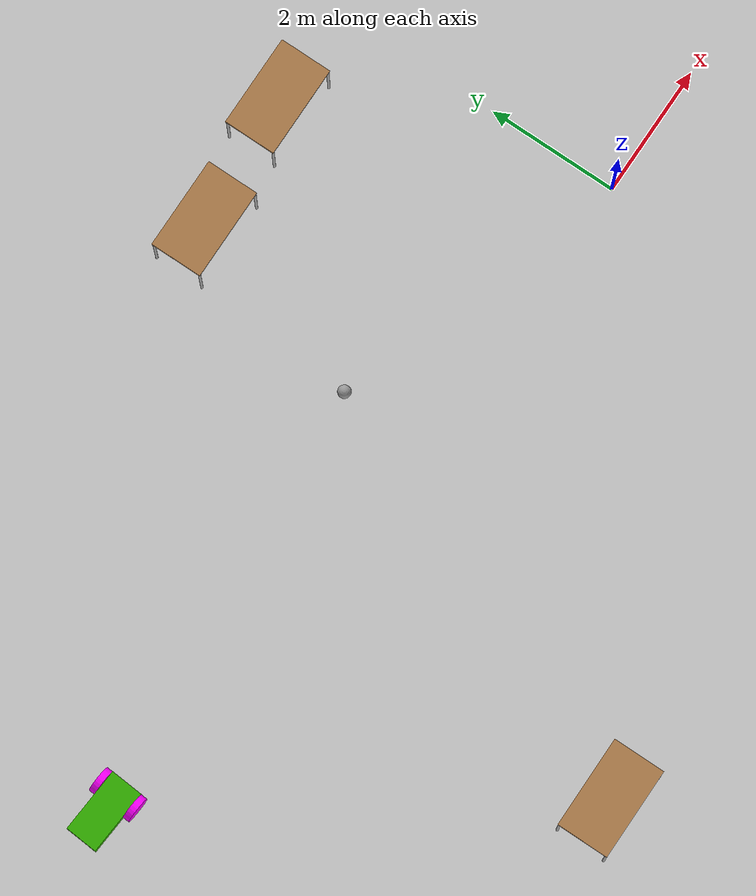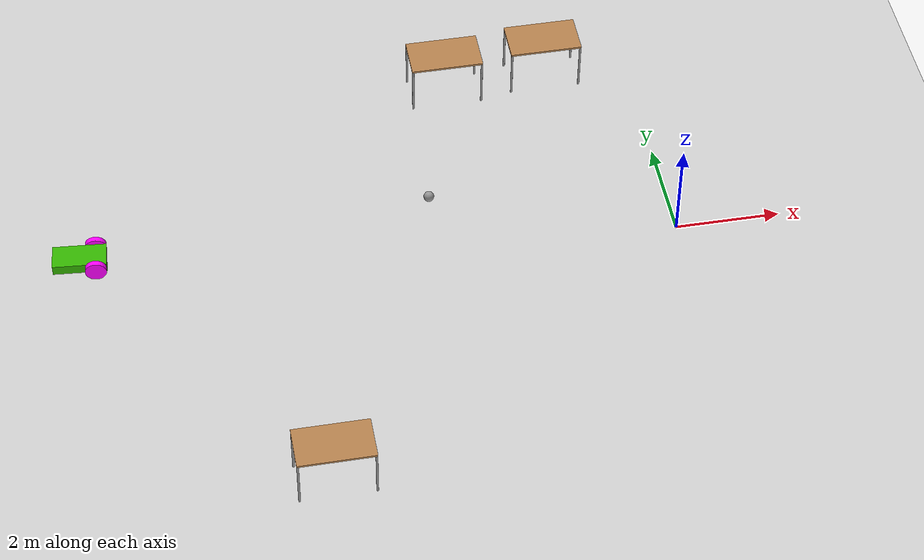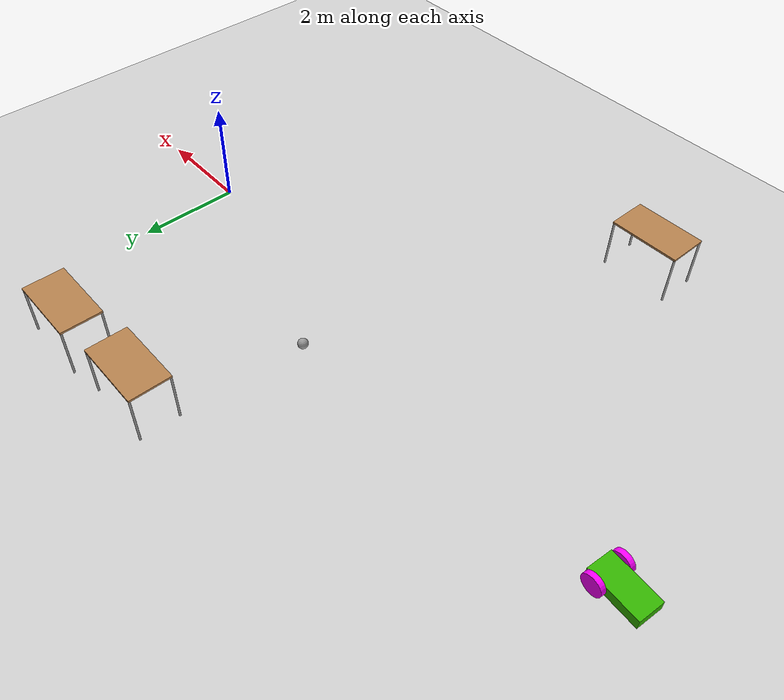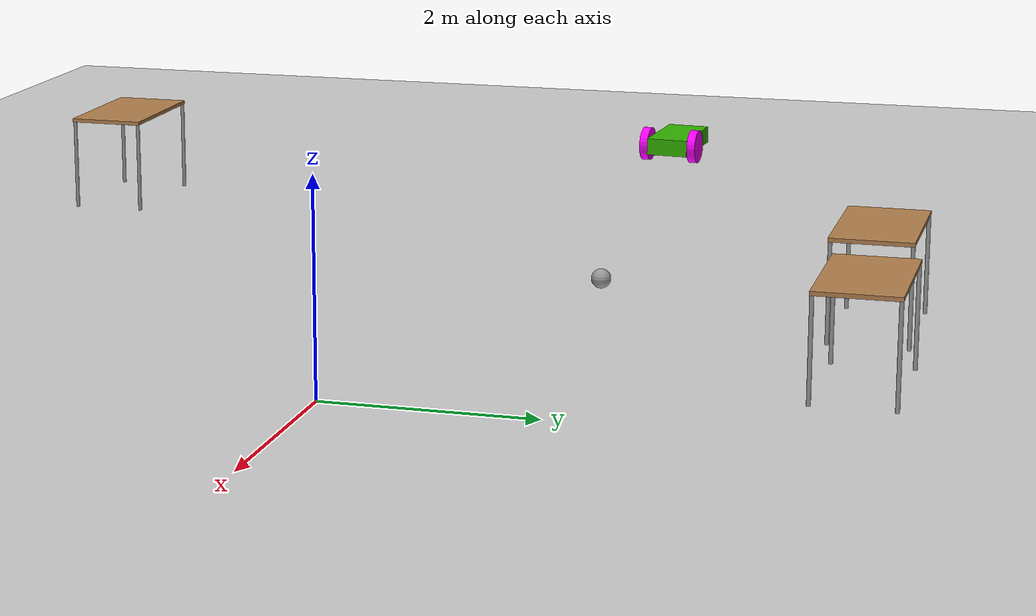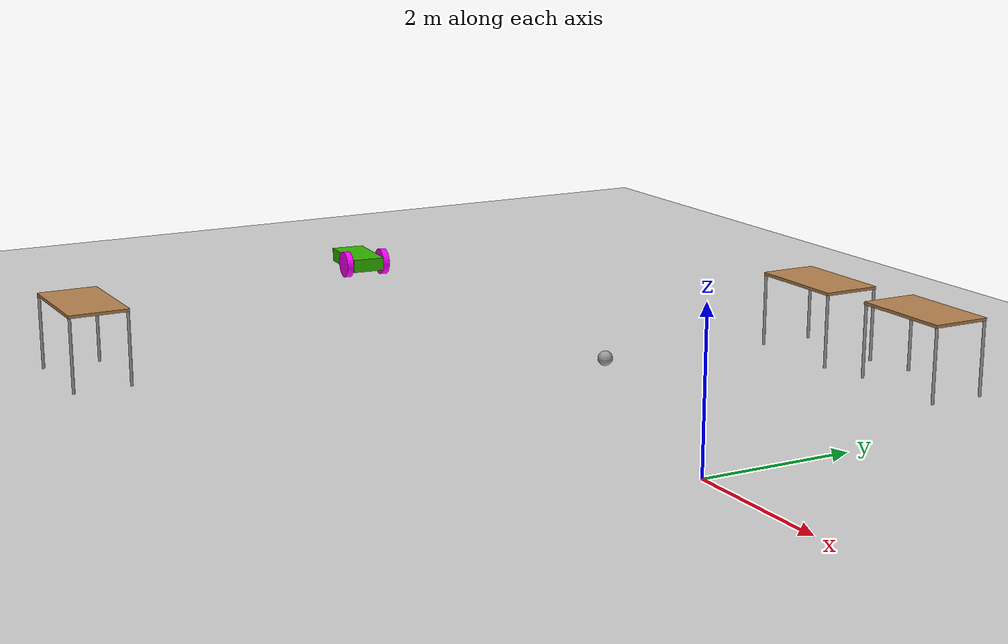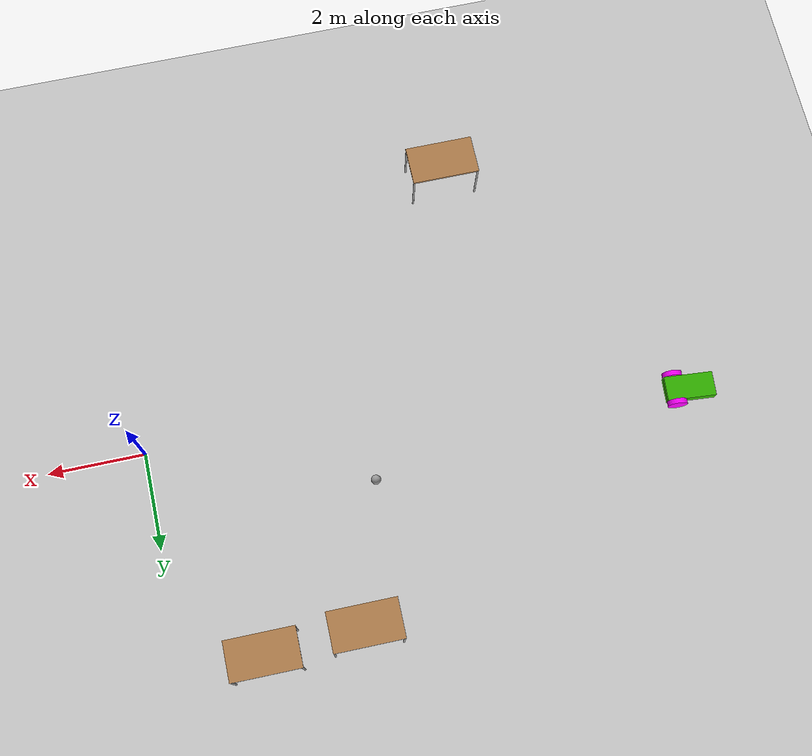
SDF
<sdf version="1.6">
 <world name="default">
  <model name="ground_plane">
   <static>1</static>
   <link name="link">
    <collision name="collision">
     <geometry><plane><normal>0 0 1</normal><size>100 100</size></plane></geometry>
     <surface><friction><ode><mu>100</mu><mu2>50</mu2></ode></friction></surface>
    </collision>
    <visual name="visual">
     <cast_shadows>0</cast_shadows>
     <geometry><plane><normal>0 0 1</normal><size>100 100</size></plane></geometry>
     <material>
      <script><uri>file://media/materials/scripts/gazebo.material</uri><name>Gazebo/Grey</name></script>
     </material>
    </visual>
   </link>
  </model>
  <model name="diffrobot">
   <link name="link_0">
    <pose>-0.05 -0 0.025 0 -0 0</pose>
    <inertial>
     <mass>1</mass>
     <inertia>
      <ixx>0.166667</ixx>
      <ixy>0</ixy>
      <ixz>0</ixz>
      <iyy>0.166667</iyy>
      <iyz>0</iyz>
      <izz>0.166667</izz>
     </inertia>
    </inertial>
    <visual name="visual">
     <geometry><box><size>1 0.5 0.2</size></box></geometry>
     <material>
      <lighting>1</lighting>
      <script><uri>file://media/materials/scripts/gazebo.material</uri><name>Gazebo/Grey</name></script>
      <ambient>0.2 0.7 0 1</ambient>
      <diffuse>0.2 0.7 0 1</diffuse>
      <specular>0.2 0.7 0 1</specular>
      <emissive>0.2 0.7 0 1</emissive>
      <shader type="vertex"><normal_map>__default__</normal_map></shader>
     </material>
    </visual>
    <collision name="collision">
     <geometry><box><size>1 0.5 0.2</size></box></geometry>
     <surface>
      <friction>
       <ode><mu>1</mu><mu2>1</mu2><fdir1>0 0 0</fdir1><slip1>0</slip1><slip2>0</slip2></ode>
       <torsional>
        <coefficient>1</coefficient>
        <patch_radius>0</patch_radius>
        <surface_radius>0</surface_radius>
        <use_patch_radius>1</use_patch_radius>
        <ode><slip>0</slip></ode>
       </torsional>
      </friction>
      <bounce><restitution_coefficient>0</restitution_coefficient><threshold>1e+06</threshold></bounce>
      <contact>
       <collide_without_contact>0</collide_without_contact>
       <collide_without_contact_bitmask>1</collide_without_contact_bitmask>
       <collide_bitmask>1</collide_bitmask>
       <ode>
        <soft_cfm>0</soft_cfm>
        <soft_erp>0.2</soft_erp>
        <kp>1e+13</kp>
        <kd>1</kd>
        <max_vel>0.01</max_vel>
        <min_depth>0</min_depth>
       </ode>
       <bullet>
        <split_impulse>1</split_impulse>
        <split_impulse_penetration_threshold>-0.01</split_impulse_penetration_threshold>
        <soft_cfm>0</soft_cfm>
        <soft_erp>0.2</soft_erp>
        <kp>1e+13</kp>
        <kd>1</kd>
       </bullet>
      </contact>
     </surface>
    </collision>
   </link>
   <link name="link_1">
    <pose>0.25 -0.300019 0.025 1.5707 -0 0</pose>
    <inertial>
     <mass>1</mass>
     <inertia><ixx>0.145833</ixx><ixy>0</ixy><ixz>0</ixz><iyy>0.145833</iyy><iyz>0</iyz><izz>0.125</izz></inertia>
    </inertial>
    <visual name="visual">
     <geometry><cylinder><radius>0.2</radius><length>0.1</length></cylinder></geometry>
     <material>
      <lighting>1</lighting>
      <script><uri>file://media/materials/scripts/gazebo.material</uri><name>Gazebo/Grey</name></script>
      <ambient>1 0 1 1</ambient>
      <diffuse>1 0 1 1</diffuse>
      <specular>1 0 1 1</specular>
      <emissive>1 0 1 1</emissive>
      <shader type="vertex"><normal_map>__default__</normal_map></shader>
     </material>
    </visual>
    <collision name="collision">
     <geometry><cylinder><radius>0.2</radius><length>0.1</length></cylinder></geometry>
     <surface>
      <friction>
       <ode><mu>1</mu><mu2>1</mu2><fdir1>0 0 0</fdir1><slip1>0</slip1><slip2>0</slip2></ode>
       <torsional>
        <coefficient>1</coefficient>
        <patch_radius>0</patch_radius>
        <surface_radius>0</surface_radius>
        <use_patch_radius>1</use_patch_radius>
        <ode><slip>0</slip></ode>
       </torsional>
      </friction>
      <bounce><restitution_coefficient>0</restitution_coefficient><threshold>1e+06</threshold></bounce>
      <contact>
       <collide_without_contact>0</collide_without_contact>
       <collide_without_contact_bitmask>1</collide_without_contact_bitmask>
       <collide_bitmask>1</collide_bitmask>
       <ode>
        <soft_cfm>0</soft_cfm>
        <soft_erp>0.2</soft_erp>
        <kp>1e+13</kp>
        <kd>1</kd>
        <max_vel>0.01</max_vel>
        <min_depth>0</min_depth>
       </ode>
       <bullet>
        <split_impulse>1</split_impulse>
        <split_impulse_penetration_threshold>-0.01</split_impulse_penetration_threshold>
        <soft_cfm>0</soft_cfm>
        <soft_erp>0.2</soft_erp>
        <kp>1e+13</kp>
        <kd>1</kd>
       </bullet>
      </contact>
     </surface>
    </collision>
   </link>
   <link name="link_1_clone">
    <pose>0.25 0.300019 0.025 1.5707 -0 0</pose>
    <inertial>
     <mass>1</mass>
     <inertia><ixx>0.145833</ixx><ixy>0</ixy><ixz>0</ixz><iyy>0.145833</iyy><iyz>0</iyz><izz>0.125</izz></inertia>
    </inertial>
    <visual name="visual">
     <geometry><cylinder><radius>0.2</radius><length>0.1</length></cylinder></geometry>
     <material>
      <lighting>1</lighting>
      <script><uri>file://media/materials/scripts/gazebo.material</uri><name>Gazebo/Grey</name></script>
      <ambient>1 0 1 1</ambient>
      <diffuse>1 0 1 1</diffuse>
      <specular>1 0 1 1</specular>
      <emissive>1 0 1 1</emissive>
      <shader type="vertex"><normal_map>__default__</normal_map></shader>
     </material>
    </visual>
    <collision name="collision">
     <geometry><cylinder><radius>0.2</radius><length>0.1</length></cylinder></geometry>
     <surface>
      <friction>
       <ode><mu>1</mu><mu2>1</mu2><fdir1>0 0 0</fdir1><slip1>0</slip1><slip2>0</slip2></ode>
       <torsional>
        <coefficient>1</coefficient>
        <patch_radius>0</patch_radius>
        <surface_radius>0</surface_radius>
        <use_patch_radius>1</use_patch_radius>
        <ode><slip>0</slip></ode>
       </torsional>
      </friction>
      <bounce><restitution_coefficient>0</restitution_coefficient><threshold>1e+06</threshold></bounce>
      <contact>
       <collide_without_contact>0</collide_without_contact>
       <collide_without_contact_bitmask>1</collide_without_contact_bitmask>
       <collide_bitmask>1</collide_bitmask>
       <ode>
        <soft_cfm>0</soft_cfm>
        <soft_erp>0.2</soft_erp>
        <kp>1e+13</kp>
        <kd>1</kd>
        <max_vel>0.01</max_vel>
        <min_depth>0</min_depth>
       </ode>
       <bullet>
        <split_impulse>1</split_impulse>
        <split_impulse_penetration_threshold>-0.01</split_impulse_penetration_threshold>
        <soft_cfm>0</soft_cfm>
        <soft_erp>0.2</soft_erp>
        <kp>1e+13</kp>
        <kd>1</kd>
       </bullet>
      </contact>
     </surface>
    </collision>
   </link>
   <link name="link_2">
    <pose>-0.45 0 -0.075 0 -0 0</pose>
    <inertial>
     <mass>1</mass>
     <inertia><ixx>0.1</ixx><ixy>0</ixy><ixz>0</ixz><iyy>0.1</iyy><iyz>0</iyz><izz>0.1</izz></inertia>
    </inertial>
    <visual name="visual">
     <geometry><sphere><radius>0.1</radius></sphere></geometry>
     <material>
      <lighting>1</lighting>
      <script><uri>file://media/materials/scripts/gazebo.material</uri><name>Gazebo/Grey</name></script>
      <ambient>0.3 0.3 0.3 1</ambient>
      <diffuse>0.7 0.7 0.7 1</diffuse>
      <specular>0.01 0.01 0.01 1</specular>
      <emissive>0 0 0 1</emissive>
      <shader type="vertex"><normal_map>__default__</normal_map></shader>
     </material>
    </visual>
    <collision name="collision">
     <geometry><sphere><radius>0.1</radius></sphere></geometry>
     <surface>
      <friction>
       <ode><mu>1</mu><mu2>1</mu2><fdir1>0 0 0</fdir1><slip1>0</slip1><slip2>0</slip2></ode>
       <torsional>
        <coefficient>1</coefficient>
        <patch_radius>0</patch_radius>
        <surface_radius>0</surface_radius>
        <use_patch_radius>1</use_patch_radius>
        <ode><slip>0</slip></ode>
       </torsional>
      </friction>
      <bounce><restitution_coefficient>0</restitution_coefficient><threshold>1e+06</threshold></bounce>
      <contact>
       <collide_without_contact>0</collide_without_contact>
       <collide_without_contact_bitmask>1</collide_without_contact_bitmask>
       <collide_bitmask>1</collide_bitmask>
       <ode>
        <soft_cfm>0</soft_cfm>
        <soft_erp>0.2</soft_erp>
        <kp>1e+13</kp>
        <kd>1</kd>
        <max_vel>0.01</max_vel>
        <min_depth>0</min_depth>
       </ode>
       <bullet>
        <split_impulse>1</split_impulse>
        <split_impulse_penetration_threshold>-0.01</split_impulse_penetration_threshold>
        <soft_cfm>0</soft_cfm>
        <soft_erp>0.2</soft_erp>
        <kp>1e+13</kp>
        <kd>1</kd>
       </bullet>
      </contact>
     </surface>
    </collision>
   </link>
   <joint name="link_0_JOINT_0" type="revolute">
    <parent>link_0</parent>
    <child>link_1</child>
    <axis>
     <xyz>0 0 1</xyz>
     <use_parent_model_frame>0</use_parent_model_frame>
     <limit>
      <lower>-1.79769e+308</lower>
      <upper>1.79769e+308</upper>
      <effort>-1</effort>
      <velocity>-1</velocity>
     </limit>
     <dynamics>
      <spring_reference>0</spring_reference>
      <spring_stiffness>0</spring_stiffness>
      <damping>0</damping>
      <friction>0</friction>
     </dynamics>
    </axis>
    <physics>
     <ode><limit><cfm>0</cfm><erp>0.2</erp></limit><suspension><cfm>0</cfm><erp>0.2</erp></suspension></ode>
    </physics>
   </joint>
   <joint name="link_0_JOINT_1" type="revolute">
    <parent>link_0</parent>
    <child>link_1_clone</child>
    <axis>
     <xyz>0 0 1</xyz>
     <use_parent_model_frame>0</use_parent_model_frame>
     <limit>
      <lower>-1.79769e+308</lower>
      <upper>1.79769e+308</upper>
      <effort>-1</effort>
      <velocity>-1</velocity>
     </limit>
     <dynamics>
      <spring_reference>0</spring_reference>
      <spring_stiffness>0</spring_stiffness>
      <damping>0</damping>
      <friction>0</friction>
     </dynamics>
    </axis>
    <physics>
     <ode><limit><cfm>0</cfm><erp>0.2</erp></limit><suspension><cfm>0</cfm><erp>0.2</erp></suspension></ode>
    </physics>
   </joint>
   <joint name="link_0_JOINT_2" type="ball">
    <parent>link_0</parent>
    <child>link_2</child>
    <physics>
     <ode><limit><cfm>0</cfm><erp>0.2</erp></limit><suspension><cfm>0</cfm><erp>0.2</erp></suspension></ode>
    </physics>
   </joint>
   <static>0</static>
   <pose>-11.1125 0.954521 0.175003 0 -7e-06 -0.081413</pose>
  </model>
  <model name="table">
   <static>0</static>
   <link name="link">
    <collision name="surface">
     <pose>0 0 1 0 -0 0</pose>
     <geometry><box><size>1.5 0.8 0.03</size></box></geometry>
     <surface><friction><ode><mu>0.6</mu><mu2>0.6</mu2></ode></friction></surface>
    </collision>
    <visual name="visual1">
     <pose>0 0 1 0 -0 0</pose>
     <geometry><box><size>1.4 0.8 0.04</size></box></geometry>
     <material>
      <script><uri>file://media/materials/scripts/gazebo.material</uri><name>Gazebo/Wood</name></script>
     </material>
    </visual>
    <collision name="front_left_leg">
     <pose>0.68 0.38 0.5 0 -0 0</pose>
     <geometry><cylinder><radius>0.02</radius><length>1</length></cylinder></geometry>
    </collision>
    <visual name="front_left_leg">
     <pose>0.68 0.38 0.5 0 -0 0</pose>
     <geometry><cylinder><radius>0.02</radius><length>1</length></cylinder></geometry>
     <material>
      <script><uri>file://media/materials/scripts/gazebo.material</uri><name>Gazebo/Grey</name></script>
     </material>
    </visual>
    <collision name="front_right_leg">
     <pose>0.68 -0.38 0.5 0 -0 0</pose>
     <geometry><cylinder><radius>0.02</radius><length>1</length></cylinder></geometry>
    </collision>
    <visual name="front_right_leg">
     <pose>0.68 -0.38 0.5 0 -0 0</pose>
     <geometry><cylinder><radius>0.02</radius><length>1</length></cylinder></geometry>
     <material>
      <script><uri>file://media/materials/scripts/gazebo.material</uri><name>Gazebo/Grey</name></script>
     </material>
    </visual>
    <collision name="back_right_leg">
     <pose>-0.68 -0.38 0.5 0 -0 0</pose>
     <geometry><cylinder><radius>0.02</radius><length>1</length></cylinder></geometry>
    </collision>
    <visual name="back_right_leg">
     <pose>-0.68 -0.38 0.5 0 -0 0</pose>
     <geometry><cylinder><radius>0.02</radius><length>1</length></cylinder></geometry>
     <material>
      <script><uri>file://media/materials/scripts/gazebo.material</uri><name>Gazebo/Grey</name></script>
     </material>
    </visual>
    <collision name="back_left_leg">
     <pose>-0.68 0.38 0.5 0 -0 0</pose>
     <geometry><cylinder><radius>0.02</radius><length>1</length></cylinder></geometry>
    </collision>
    <visual name="back_left_leg">
     <pose>-0.68 0.38 0.5 0 -0 0</pose>
     <geometry><cylinder><radius>0.02</radius><length>1</length></cylinder></geometry>
     <material>
      <script><uri>file://media/materials/scripts/gazebo.material</uri><name>Gazebo/Grey</name></script>
     </material>
    </visual>
    <inertial>
     <inertia><ixx>1</ixx><ixy>0</ixy><ixz>0</ixz><iyy>1</iyy><iyz>0</iyz><izz>1</izz></inertia>
     <mass>1</mass>
    </inertial>
   </link>
   <pose>-1.68201 4.48681 -1e-06 1e-06 -0 0</pose>
  </model>
  <model name="table_0">
   <static>0</static>
   <link name="link">
    <collision name="surface">
     <pose>0 0 1 0 -0 0</pose>
     <geometry><box><size>1.5 0.8 0.03</size></box></geometry>
     <surface><friction><ode><mu>0.6</mu><mu2>0.6</mu2></ode></friction></surface>
    </collision>
    <visual name="visual1">
     <pose>0 0 1 0 -0 0</pose>
     <geometry><box><size>1.4 0.8 0.04</size></box></geometry>
     <material>
      <script><uri>file://media/materials/scripts/gazebo.material</uri><name>Gazebo/Wood</name></script>
     </material>
    </visual>
    <collision name="front_left_leg">
     <pose>0.68 0.38 0.5 0 -0 0</pose>
     <geometry><cylinder><radius>0.02</radius><length>1</length></cylinder></geometry>
    </collision>
    <visual name="front_left_leg">
     <pose>0.68 0.38 0.5 0 -0 0</pose>
     <geometry><cylinder><radius>0.02</radius><length>1</length></cylinder></geometry>
     <material>
      <script><uri>file://media/materials/scripts/gazebo.material</uri><name>Gazebo/Grey</name></script>
     </material>
    </visual>
    <collision name="front_right_leg">
     <pose>0.68 -0.38 0.5 0 -0 0</pose>
     <geometry><cylinder><radius>0.02</radius><length>1</length></cylinder></geometry>
    </collision>
    <visual name="front_right_leg">
     <pose>0.68 -0.38 0.5 0 -0 0</pose>
     <geometry><cylinder><radius>0.02</radius><length>1</length></cylinder></geometry>
     <material>
      <script><uri>file://media/materials/scripts/gazebo.material</uri><name>Gazebo/Grey</name></script>
     </material>
    </visual>
    <collision name="back_right_leg">
     <pose>-0.68 -0.38 0.5 0 -0 0</pose>
     <geometry><cylinder><radius>0.02</radius><length>1</length></cylinder></geometry>
    </collision>
    <visual name="back_right_leg">
     <pose>-0.68 -0.38 0.5 0 -0 0</pose>
     <geometry><cylinder><radius>0.02</radius><length>1</length></cylinder></geometry>
     <material>
      <script><uri>file://media/materials/scripts/gazebo.material</uri><name>Gazebo/Grey</name></script>
     </material>
    </visual>
    <collision name="back_left_leg">
     <pose>-0.68 0.38 0.5 0 -0 0</pose>
     <geometry><cylinder><radius>0.02</radius><length>1</length></cylinder></geometry>
    </collision>
    <visual name="back_left_leg">
     <pose>-0.68 0.38 0.5 0 -0 0</pose>
     <geometry><cylinder><radius>0.02</radius><length>1</length></cylinder></geometry>
     <material>
      <script><uri>file://media/materials/scripts/gazebo.material</uri><name>Gazebo/Grey</name></script>
     </material>
    </visual>
    <inertial>
     <inertia><ixx>1</ixx><ixy>0</ixy><ixz>0</ixz><iyy>1</iyy><iyz>0</iyz><izz>1</izz></inertia>
     <mass>1</mass>
    </inertial>
   </link>
   <pose>-3.67259 4.36128 -9e-06 0 -1e-06 0</pose>
  </model>
  <model name="table_0_clone">
   <static>0</static>
   <link name="link">
    <collision name="surface">
     <pose>0 0 1 0 -0 0</pose>
     <geometry><box><size>1.5 0.8 0.03</size></box></geometry>
     <surface><friction><ode><mu>0.6</mu><mu2>0.6</mu2></ode></friction></surface>
    </collision>
    <visual name="visual1">
     <pose>0 0 1 0 -0 0</pose>
     <geometry><box><size>1.4 0.8 0.04</size></box></geometry>
     <material>
      <script><uri>file://media/materials/scripts/gazebo.material</uri><name>Gazebo/Wood</name></script>
     </material>
    </visual>
    <collision name="front_left_leg">
     <pose>0.68 0.38 0.5 0 -0 0</pose>
     <geometry><cylinder><radius>0.02</radius><length>1</length></cylinder></geometry>
    </collision>
    <visual name="front_left_leg">
     <pose>0.68 0.38 0.5 0 -0 0</pose>
     <geometry><cylinder><radius>0.02</radius><length>1</length></cylinder></geometry>
     <material>
      <script><uri>file://media/materials/scripts/gazebo.material</uri><name>Gazebo/Grey</name></script>
     </material>
    </visual>
    <collision name="front_right_leg">
     <pose>0.68 -0.38 0.5 0 -0 0</pose>
     <geometry><cylinder><radius>0.02</radius><length>1</length></cylinder></geometry>
    </collision>
    <visual name="front_right_leg">
     <pose>0.68 -0.38 0.5 0 -0 0</pose>
     <geometry><cylinder><radius>0.02</radius><length>1</length></cylinder></geometry>
     <material>
      <script><uri>file://media/materials/scripts/gazebo.material</uri><name>Gazebo/Grey</name></script>
     </material>
    </visual>
    <collision name="back_right_leg">
     <pose>-0.68 -0.38 0.5 0 -0 0</pose>
     <geometry><cylinder><radius>0.02</radius><length>1</length></cylinder></geometry>
    </collision>
    <visual name="back_right_leg">
     <pose>-0.68 -0.38 0.5 0 -0 0</pose>
     <geometry><cylinder><radius>0.02</radius><length>1</length></cylinder></geometry>
     <material>
      <script><uri>file://media/materials/scripts/gazebo.material</uri><name>Gazebo/Grey</name></script>
     </material>
    </visual>
    <collision name="back_left_leg">
     <pose>-0.68 0.38 0.5 0 -0 0</pose>
     <geometry><cylinder><radius>0.02</radius><length>1</length></cylinder></geometry>
    </collision>
    <visual name="back_left_leg">
     <pose>-0.68 0.38 0.5 0 -0 0</pose>
     <geometry><cylinder><radius>0.02</radius><length>1</length></cylinder></geometry>
     <material>
      <script><uri>file://media/materials/scripts/gazebo.material</uri><name>Gazebo/Grey</name></script>
     </material>
    </visual>
    <inertial>
     <inertia><ixx>1</ixx><ixy>0</ixy><ixz>0</ixz><iyy>1</iyy><iyz>0</iyz><izz>1</izz></inertia>
     <mass>1</mass>
    </inertial>
   </link>
   <pose>-7.21172 -4.70427 -9e-06 0 -1e-06 0</pose>
  </model>
  <model name="my_ball">
   <link name="link_0">
    <inertial>
     <mass>1</mass>
     <inertia><ixx>0.1</ixx><ixy>0</ixy><ixz>0</ixz><iyy>0.1</iyy><iyz>0</iyz><izz>0.1</izz></inertia>
    </inertial>
    <visual name="visual">
     <geometry><sphere><radius>0.1</radius></sphere></geometry>
     <material>
      <lighting>1</lighting>
      <script><uri>file://media/materials/scripts/gazebo.material</uri><name>Gazebo/Grey</name></script>
      <shader type="pixel"><normal_map>__default__</normal_map></shader>
      <ambient>1 1 1 1</ambient>
      <diffuse>1 1 1 1</diffuse>
      <specular>1 1 1 1</specular>
      <emissive>1 1 1 1</emissive>
     </material>
    </visual>
    <collision name="collision">
     <geometry><sphere><radius>0.1</radius></sphere></geometry>
     <surface>
      <friction>
       <ode><mu>1</mu><mu2>1</mu2><fdir1>0 0 0</fdir1><slip1>0</slip1><slip2>0</slip2></ode>
       <torsional>
        <coefficient>1</coefficient>
        <patch_radius>0</patch_radius>
        <surface_radius>0</surface_radius>
        <use_patch_radius>1</use_patch_radius>
        <ode><slip>0</slip></ode>
       </torsional>
      </friction>
      <bounce><restitution_coefficient>0</restitution_coefficient><threshold>1e+06</threshold></bounce>
      <contact>
       <collide_without_contact>0</collide_without_contact>
       <collide_without_contact_bitmask>1</collide_without_contact_bitmask>
       <collide_bitmask>1</collide_bitmask>
       <ode>
        <soft_cfm>0</soft_cfm>
        <soft_erp>0.2</soft_erp>
        <kp>1e+13</kp>
        <kd>1</kd>
        <max_vel>0.01</max_vel>
        <min_depth>0</min_depth>
       </ode>
       <bullet>
        <split_impulse>1</split_impulse>
        <split_impulse_penetration_threshold>-0.01</split_impulse_penetration_threshold>
        <soft_cfm>0</soft_cfm>
        <soft_erp>0.2</soft_erp>
        <kp>1e+13</kp>
        <kd>1</kd>
       </bullet>
      </contact>
     </surface>
    </collision>
   </link>
   <static>0</static>
   <pose>-4.47974 1.49866 0.1 0 -0 0</pose>
  </model>
 </world>
</sdf>
